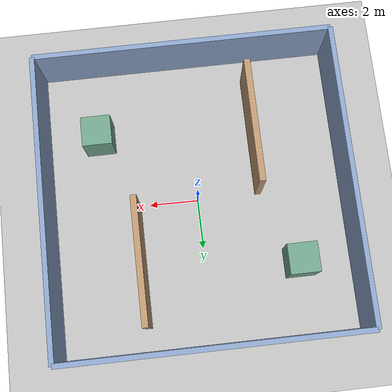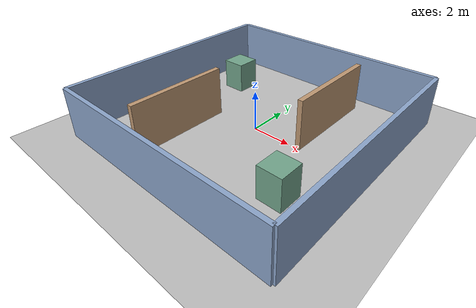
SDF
<?xml version='1.0' encoding='utf-8'?>
<sdf version="1.6">
  <world name="px4_simple">
    <gravity>0 0 -9.81</gravity>
    <physics type="ode">
      <max_step_size>0.002</max_step_size>
      <real_time_update_rate>500</real_time_update_rate>
    </physics>
    <scene>
      <ambient>0.6 0.6 0.6 1</ambient>
      <background>0.8 0.85 0.9 1</background>
    </scene>
    <light name="sun" type="directional">
      <pose>0 0 10 0 0 0</pose>
      <diffuse>0.8 0.8 0.8 1</diffuse>
      <direction>-0.2 -0.4 -1</direction>
    </light>
    <model name="ground">
      <static>true</static>
      <link name="ground">
        <collision name="collision">
          <geometry>
            <plane>
              <normal>0 0 1</normal>
              <size>20 20</size>
            </plane>
          </geometry>
        </collision>
        <visual name="visual">
          <geometry>
            <plane>
              <normal>0 0 1</normal>
              <size>20 20</size>
            </plane>
          </geometry>
          <material>
            <ambient>0.75 0.75 0.75 1</ambient>
          </material>
        </visual>
      </link>
    </model>
    <model name="north_wall">
      <static>true</static>
      <pose>0 6 1.25 0 0 0</pose>
      <link name="body">
        <collision name="c">
          <geometry>
            <box>
              <size>12 0.2 2.5</size>
            </box>
          </geometry>
        </collision>
        <visual name="v">
          <geometry>
            <box>
              <size>12 0.2 2.5</size>
            </box>
          </geometry>
          <material>
            <ambient>0.55 0.65 0.8 1</ambient>
          </material>
        </visual>
      </link>
    </model>
    <model name="south_wall">
      <static>true</static>
      <pose>0 -6 1.25 0 0 0</pose>
      <link name="body">
        <collision name="c">
          <geometry>
            <box>
              <size>12 0.2 2.5</size>
            </box>
          </geometry>
        </collision>
        <visual name="v">
          <geometry>
            <box>
              <size>12 0.2 2.5</size>
            </box>
          </geometry>
          <material>
            <ambient>0.55 0.65 0.8 1</ambient>
          </material>
        </visual>
      </link>
    </model>
    <model name="east_wall">
      <static>true</static>
      <pose>6 0 1.25 0 0 0</pose>
      <link name="body">
        <collision name="c">
          <geometry>
            <box>
              <size>0.2 12 2.5</size>
            </box>
          </geometry>
        </collision>
        <visual name="v">
          <geometry>
            <box>
              <size>0.2 12 2.5</size>
            </box>
          </geometry>
          <material>
            <ambient>0.55 0.65 0.8 1</ambient>
          </material>
        </visual>
      </link>
    </model>
    <model name="west_wall">
      <static>true</static>
      <pose>-6 0 1.25 0 0 0</pose>
      <link name="body">
        <collision name="c">
          <geometry>
            <box>
              <size>0.2 12 2.5</size>
            </box>
          </geometry>
        </collision>
        <visual name="v">
          <geometry>
            <box>
              <size>0.2 12 2.5</size>
            </box>
          </geometry>
          <material>
            <ambient>0.55 0.65 0.8 1</ambient>
          </material>
        </visual>
      </link>
    </model>
    <model name="partition_a">
      <static>true</static>
      <pose>2.5 2.5 1.25 0 0 0</pose>
      <link name="body">
        <collision name="c">
          <geometry>
            <box>
              <size>0.25 5 2.5</size>
            </box>
          </geometry>
        </collision>
        <visual name="v">
          <geometry>
            <box>
              <size>0.25 5 2.5</size>
            </box>
          </geometry>
          <material>
            <ambient>0.75 0.6 0.45 1</ambient>
          </material>
        </visual>
      </link>
    </model>
    <model name="partition_b">
      <static>true</static>
      <pose>-2.5 -2.5 1.25 0 0 0</pose>
      <link name="body">
        <collision name="c">
          <geometry>
            <box>
              <size>0.25 5 2.5</size>
            </box>
          </geometry>
        </collision>
        <visual name="v">
          <geometry>
            <box>
              <size>0.25 5 2.5</size>
            </box>
          </geometry>
          <material>
            <ambient>0.75 0.6 0.45 1</ambient>
          </material>
        </visual>
      </link>
    </model>
    <model name="block_a">
      <static>true</static>
      <pose>3.8 -3.0 0.8 0 0 0</pose>
      <link name="body">
        <collision name="c">
          <geometry>
            <box>
              <size>1.2 1.2 1.6</size>
            </box>
          </geometry>
        </collision>
        <visual name="v">
          <geometry>
            <box>
              <size>1.2 1.2 1.6</size>
            </box>
          </geometry>
          <material>
            <ambient>0.45 0.65 0.55 1</ambient>
          </material>
        </visual>
      </link>
    </model>
    <model name="block_b">
      <static>true</static>
      <pose>-3.8 3.0 0.8 0 0 0</pose>
      <link name="body">
        <collision name="c">
          <geometry>
            <box>
              <size>1.2 1.2 1.6</size>
            </box>
          </geometry>
        </collision>
        <visual name="v">
          <geometry>
            <box>
              <size>1.2 1.2 1.6</size>
            </box>
          </geometry>
          <material>
            <ambient>0.45 0.65 0.55 1</ambient>
          </material>
        </visual>
      </link>
    </model>
    </world>
</sdf>
